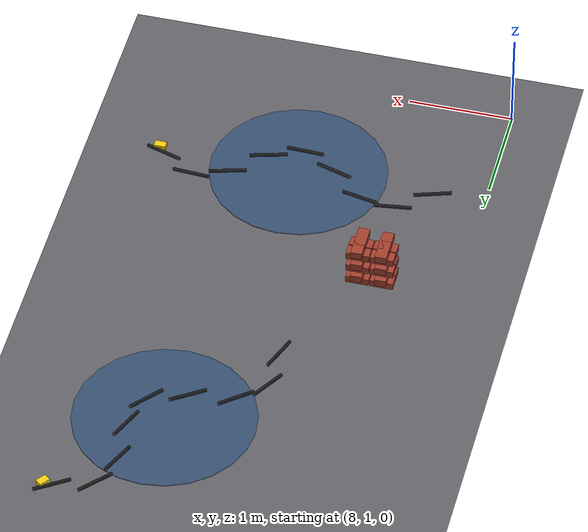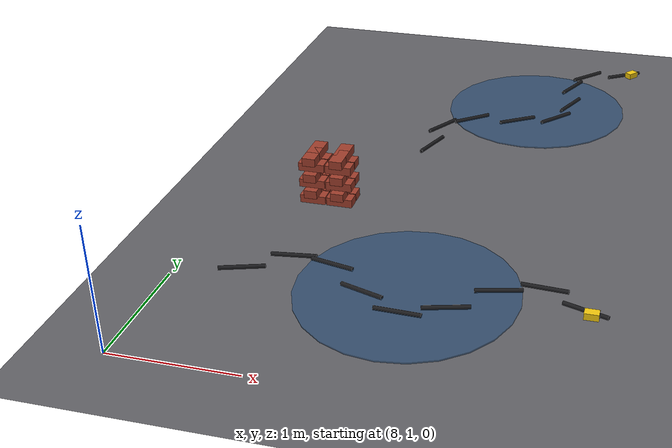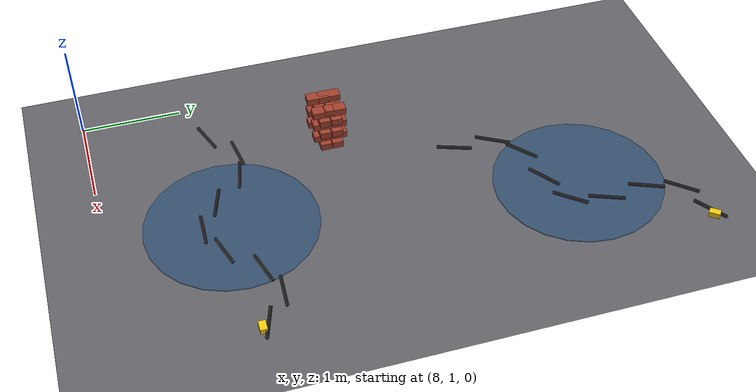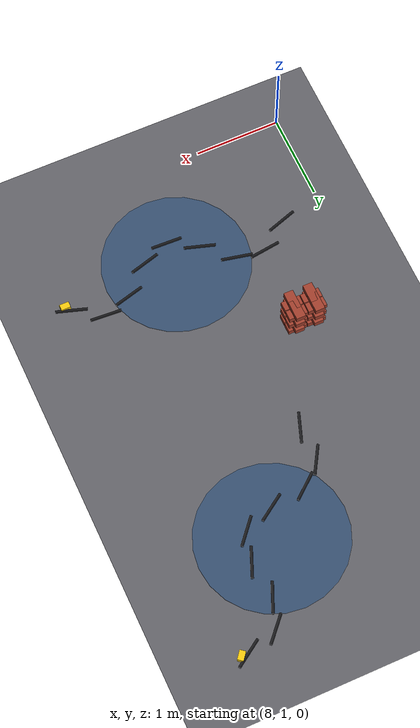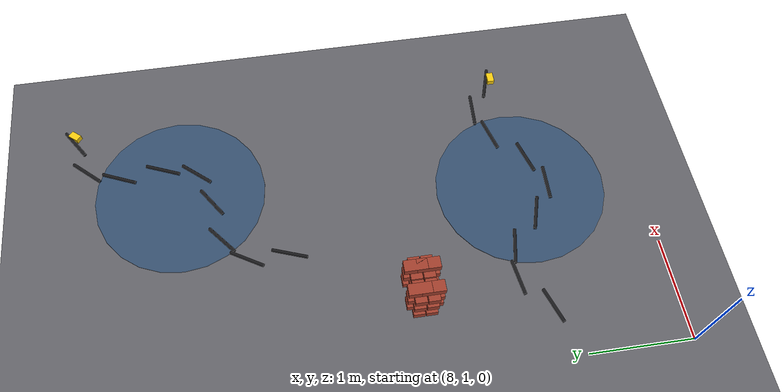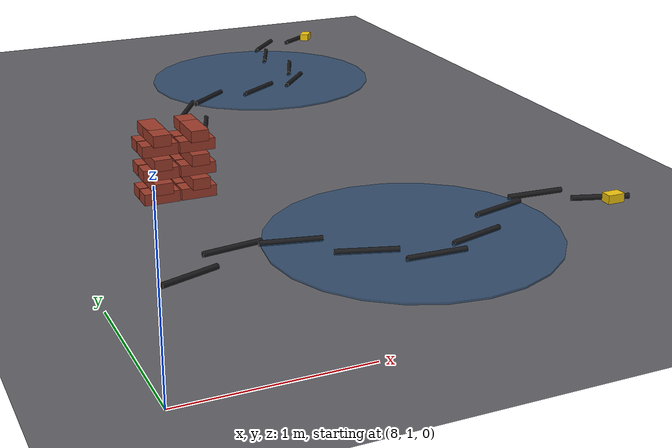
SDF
<sdf version="1.6">
 <world name="construction_lab_C">
  <model name="ground">
   <static>1</static>
   <link name="ground_link">
    <collision name="ground_col">
     <geometry><plane><normal>0 0 1</normal><size>60 60</size></plane></geometry>
     <surface><friction><ode><mu>0.9</mu><mu2>0.9</mu2></ode></friction></surface>
    </collision>
    <visual name="ground_vis">
     <geometry><plane><normal>0 0 1</normal><size>60 60</size></plane></geometry>
     <material><ambient>0.30 0.30 0.32 1</ambient><diffuse>0.38 0.38 0.40 1</diffuse></material>
    </visual>
   </link>
  </model>
  <model name="hazard_C6">
   <static>1</static>
   <link name="hC6_brick_stack_walkway_s00">
    <pose>8.685 3.34 0.035 0 0 0</pose>
    <gravity>0</gravity>
    <collision name="hC6_brick_stack_walkway_s00_col">
     <geometry><box><size>0.22 0.11 0.07</size></box></geometry>
    </collision>
    <visual name="hC6_brick_stack_walkway_s00_vis">
     <geometry><box><size>0.22 0.11 0.07</size></box></geometry>
     <material>
      <ambient>0.62 0.24 0.17 1</ambient>
      <diffuse>0.62 0.24 0.17 1</diffuse>
      <specular>0.1 0.1 0.1 1</specular>
     </material>
    </visual>
   </link>
   <link name="hC6_brick_stack_walkway_s01">
    <pose>8.915 3.34 0.035 0 0 0</pose>
    <gravity>0</gravity>
    <collision name="hC6_brick_stack_walkway_s01_col">
     <geometry><box><size>0.22 0.11 0.07</size></box></geometry>
    </collision>
    <visual name="hC6_brick_stack_walkway_s01_vis">
     <geometry><box><size>0.22 0.11 0.07</size></box></geometry>
     <material>
      <ambient>0.62 0.24 0.17 1</ambient>
      <diffuse>0.62 0.24 0.17 1</diffuse>
      <specular>0.1 0.1 0.1 1</specular>
     </material>
    </visual>
   </link>
   <link name="hC6_brick_stack_walkway_s02">
    <pose>8.685 3.46 0.035 0 0 0</pose>
    <gravity>0</gravity>
    <collision name="hC6_brick_stack_walkway_s02_col">
     <geometry><box><size>0.22 0.11 0.07</size></box></geometry>
    </collision>
    <visual name="hC6_brick_stack_walkway_s02_vis">
     <geometry><box><size>0.22 0.11 0.07</size></box></geometry>
     <material>
      <ambient>0.62 0.24 0.17 1</ambient>
      <diffuse>0.62 0.24 0.17 1</diffuse>
      <specular>0.1 0.1 0.1 1</specular>
     </material>
    </visual>
   </link>
   <link name="hC6_brick_stack_walkway_s03">
    <pose>8.915 3.46 0.035 0 0 0</pose>
    <gravity>0</gravity>
    <collision name="hC6_brick_stack_walkway_s03_col">
     <geometry><box><size>0.22 0.11 0.07</size></box></geometry>
    </collision>
    <visual name="hC6_brick_stack_walkway_s03_vis">
     <geometry><box><size>0.22 0.11 0.07</size></box></geometry>
     <material>
      <ambient>0.62 0.24 0.17 1</ambient>
      <diffuse>0.62 0.24 0.17 1</diffuse>
      <specular>0.1 0.1 0.1 1</specular>
     </material>
    </visual>
   </link>
   <link name="hC6_brick_stack_walkway_s10">
    <pose>8.685 3.34 0.11 0 0 1.5708</pose>
    <gravity>0</gravity>
    <collision name="hC6_brick_stack_walkway_s10_col">
     <geometry><box><size>0.22 0.11 0.07</size></box></geometry>
    </collision>
    <visual name="hC6_brick_stack_walkway_s10_vis">
     <geometry><box><size>0.22 0.11 0.07</size></box></geometry>
     <material>
      <ambient>0.62 0.24 0.17 1</ambient>
      <diffuse>0.62 0.24 0.17 1</diffuse>
      <specular>0.1 0.1 0.1 1</specular>
     </material>
    </visual>
   </link>
   <link name="hC6_brick_stack_walkway_s11">
    <pose>8.915 3.34 0.11 0 0 1.5708</pose>
    <gravity>0</gravity>
    <collision name="hC6_brick_stack_walkway_s11_col">
     <geometry><box><size>0.22 0.11 0.07</size></box></geometry>
    </collision>
    <visual name="hC6_brick_stack_walkway_s11_vis">
     <geometry><box><size>0.22 0.11 0.07</size></box></geometry>
     <material>
      <ambient>0.62 0.24 0.17 1</ambient>
      <diffuse>0.62 0.24 0.17 1</diffuse>
      <specular>0.1 0.1 0.1 1</specular>
     </material>
    </visual>
   </link>
   <link name="hC6_brick_stack_walkway_s12">
    <pose>8.685 3.46 0.11 0 0 1.5708</pose>
    <gravity>0</gravity>
    <collision name="hC6_brick_stack_walkway_s12_col">
     <geometry><box><size>0.22 0.11 0.07</size></box></geometry>
    </collision>
    <visual name="hC6_brick_stack_walkway_s12_vis">
     <geometry><box><size>0.22 0.11 0.07</size></box></geometry>
     <material>
      <ambient>0.62 0.24 0.17 1</ambient>
      <diffuse>0.62 0.24 0.17 1</diffuse>
      <specular>0.1 0.1 0.1 1</specular>
     </material>
    </visual>
   </link>
   <link name="hC6_brick_stack_walkway_s13">
    <pose>8.915 3.46 0.11 0 0 1.5708</pose>
    <gravity>0</gravity>
    <collision name="hC6_brick_stack_walkway_s13_col">
     <geometry><box><size>0.22 0.11 0.07</size></box></geometry>
    </collision>
    <visual name="hC6_brick_stack_walkway_s13_vis">
     <geometry><box><size>0.22 0.11 0.07</size></box></geometry>
     <material>
      <ambient>0.62 0.24 0.17 1</ambient>
      <diffuse>0.62 0.24 0.17 1</diffuse>
      <specular>0.1 0.1 0.1 1</specular>
     </material>
    </visual>
   </link>
   <link name="hC6_brick_stack_walkway_s20">
    <pose>8.685 3.34 0.185 0 0 0</pose>
    <gravity>0</gravity>
    <collision name="hC6_brick_stack_walkway_s20_col">
     <geometry><box><size>0.22 0.11 0.07</size></box></geometry>
    </collision>
    <visual name="hC6_brick_stack_walkway_s20_vis">
     <geometry><box><size>0.22 0.11 0.07</size></box></geometry>
     <material>
      <ambient>0.62 0.24 0.17 1</ambient>
      <diffuse>0.62 0.24 0.17 1</diffuse>
      <specular>0.1 0.1 0.1 1</specular>
     </material>
    </visual>
   </link>
   <link name="hC6_brick_stack_walkway_s21">
    <pose>8.915 3.34 0.185 0 0 0</pose>
    <gravity>0</gravity>
    <collision name="hC6_brick_stack_walkway_s21_col">
     <geometry><box><size>0.22 0.11 0.07</size></box></geometry>
    </collision>
    <visual name="hC6_brick_stack_walkway_s21_vis">
     <geometry><box><size>0.22 0.11 0.07</size></box></geometry>
     <material>
      <ambient>0.62 0.24 0.17 1</ambient>
      <diffuse>0.62 0.24 0.17 1</diffuse>
      <specular>0.1 0.1 0.1 1</specular>
     </material>
    </visual>
   </link>
   <link name="hC6_brick_stack_walkway_s22">
    <pose>8.685 3.46 0.185 0 0 0</pose>
    <gravity>0</gravity>
    <collision name="hC6_brick_stack_walkway_s22_col">
     <geometry><box><size>0.22 0.11 0.07</size></box></geometry>
    </collision>
    <visual name="hC6_brick_stack_walkway_s22_vis">
     <geometry><box><size>0.22 0.11 0.07</size></box></geometry>
     <material>
      <ambient>0.62 0.24 0.17 1</ambient>
      <diffuse>0.62 0.24 0.17 1</diffuse>
      <specular>0.1 0.1 0.1 1</specular>
     </material>
    </visual>
   </link>
   <link name="hC6_brick_stack_walkway_s23">
    <pose>8.915 3.46 0.185 0 0 0</pose>
    <gravity>0</gravity>
    <collision name="hC6_brick_stack_walkway_s23_col">
     <geometry><box><size>0.22 0.11 0.07</size></box></geometry>
    </collision>
    <visual name="hC6_brick_stack_walkway_s23_vis">
     <geometry><box><size>0.22 0.11 0.07</size></box></geometry>
     <material>
      <ambient>0.62 0.24 0.17 1</ambient>
      <diffuse>0.62 0.24 0.17 1</diffuse>
      <specular>0.1 0.1 0.1 1</specular>
     </material>
    </visual>
   </link>
   <link name="hC6_brick_stack_walkway_s30">
    <pose>8.685 3.34 0.26 0 0 1.5708</pose>
    <gravity>0</gravity>
    <collision name="hC6_brick_stack_walkway_s30_col">
     <geometry><box><size>0.22 0.11 0.07</size></box></geometry>
    </collision>
    <visual name="hC6_brick_stack_walkway_s30_vis">
     <geometry><box><size>0.22 0.11 0.07</size></box></geometry>
     <material>
      <ambient>0.62 0.24 0.17 1</ambient>
      <diffuse>0.62 0.24 0.17 1</diffuse>
      <specular>0.1 0.1 0.1 1</specular>
     </material>
    </visual>
   </link>
   <link name="hC6_brick_stack_walkway_s31">
    <pose>8.915 3.34 0.26 0 0 1.5708</pose>
    <gravity>0</gravity>
    <collision name="hC6_brick_stack_walkway_s31_col">
     <geometry><box><size>0.22 0.11 0.07</size></box></geometry>
    </collision>
    <visual name="hC6_brick_stack_walkway_s31_vis">
     <geometry><box><size>0.22 0.11 0.07</size></box></geometry>
     <material>
      <ambient>0.62 0.24 0.17 1</ambient>
      <diffuse>0.62 0.24 0.17 1</diffuse>
      <specular>0.1 0.1 0.1 1</specular>
     </material>
    </visual>
   </link>
   <link name="hC6_brick_stack_walkway_s32">
    <pose>8.685 3.46 0.26 0 0 1.5708</pose>
    <gravity>0</gravity>
    <collision name="hC6_brick_stack_walkway_s32_col">
     <geometry><box><size>0.22 0.11 0.07</size></box></geometry>
    </collision>
    <visual name="hC6_brick_stack_walkway_s32_vis">
     <geometry><box><size>0.22 0.11 0.07</size></box></geometry>
     <material>
      <ambient>0.62 0.24 0.17 1</ambient>
      <diffuse>0.62 0.24 0.17 1</diffuse>
      <specular>0.1 0.1 0.1 1</specular>
     </material>
    </visual>
   </link>
   <link name="hC6_brick_stack_walkway_s33">
    <pose>8.915 3.46 0.26 0 0 1.5708</pose>
    <gravity>0</gravity>
    <collision name="hC6_brick_stack_walkway_s33_col">
     <geometry><box><size>0.22 0.11 0.07</size></box></geometry>
    </collision>
    <visual name="hC6_brick_stack_walkway_s33_vis">
     <geometry><box><size>0.22 0.11 0.07</size></box></geometry>
     <material>
      <ambient>0.62 0.24 0.17 1</ambient>
      <diffuse>0.62 0.24 0.17 1</diffuse>
      <specular>0.1 0.1 0.1 1</specular>
     </material>
    </visual>
   </link>
   <link name="hC6_brick_stack_walkway_s40">
    <pose>8.685 3.34 0.335 0 0 0</pose>
    <gravity>0</gravity>
    <collision name="hC6_brick_stack_walkway_s40_col">
     <geometry><box><size>0.22 0.11 0.07</size></box></geometry>
    </collision>
    <visual name="hC6_brick_stack_walkway_s40_vis">
     <geometry><box><size>0.22 0.11 0.07</size></box></geometry>
     <material>
      <ambient>0.62 0.24 0.17 1</ambient>
      <diffuse>0.62 0.24 0.17 1</diffuse>
      <specular>0.1 0.1 0.1 1</specular>
     </material>
    </visual>
   </link>
   <link name="hC6_brick_stack_walkway_s41">
    <pose>8.915 3.34 0.335 0 0 0</pose>
    <gravity>0</gravity>
    <collision name="hC6_brick_stack_walkway_s41_col">
     <geometry><box><size>0.22 0.11 0.07</size></box></geometry>
    </collision>
    <visual name="hC6_brick_stack_walkway_s41_vis">
     <geometry><box><size>0.22 0.11 0.07</size></box></geometry>
     <material>
      <ambient>0.62 0.24 0.17 1</ambient>
      <diffuse>0.62 0.24 0.17 1</diffuse>
      <specular>0.1 0.1 0.1 1</specular>
     </material>
    </visual>
   </link>
   <link name="hC6_brick_stack_walkway_s42">
    <pose>8.685 3.46 0.335 0 0 0</pose>
    <gravity>0</gravity>
    <collision name="hC6_brick_stack_walkway_s42_col">
     <geometry><box><size>0.22 0.11 0.07</size></box></geometry>
    </collision>
    <visual name="hC6_brick_stack_walkway_s42_vis">
     <geometry><box><size>0.22 0.11 0.07</size></box></geometry>
     <material>
      <ambient>0.62 0.24 0.17 1</ambient>
      <diffuse>0.62 0.24 0.17 1</diffuse>
      <specular>0.1 0.1 0.1 1</specular>
     </material>
    </visual>
   </link>
   <link name="hC6_brick_stack_walkway_s43">
    <pose>8.915 3.46 0.335 0 0 0</pose>
    <gravity>0</gravity>
    <collision name="hC6_brick_stack_walkway_s43_col">
     <geometry><box><size>0.22 0.11 0.07</size></box></geometry>
    </collision>
    <visual name="hC6_brick_stack_walkway_s43_vis">
     <geometry><box><size>0.22 0.11 0.07</size></box></geometry>
     <material>
      <ambient>0.62 0.24 0.17 1</ambient>
      <diffuse>0.62 0.24 0.17 1</diffuse>
      <specular>0.1 0.1 0.1 1</specular>
     </material>
    </visual>
   </link>
   <link name="hC6_brick_stack_walkway_s50">
    <pose>8.685 3.34 0.41 0 0 1.5708</pose>
    <gravity>0</gravity>
    <collision name="hC6_brick_stack_walkway_s50_col">
     <geometry><box><size>0.22 0.11 0.07</size></box></geometry>
    </collision>
    <visual name="hC6_brick_stack_walkway_s50_vis">
     <geometry><box><size>0.22 0.11 0.07</size></box></geometry>
     <material>
      <ambient>0.62 0.24 0.17 1</ambient>
      <diffuse>0.62 0.24 0.17 1</diffuse>
      <specular>0.1 0.1 0.1 1</specular>
     </material>
    </visual>
   </link>
   <link name="hC6_brick_stack_walkway_s51">
    <pose>8.915 3.34 0.41 0 0 1.5708</pose>
    <gravity>0</gravity>
    <collision name="hC6_brick_stack_walkway_s51_col">
     <geometry><box><size>0.22 0.11 0.07</size></box></geometry>
    </collision>
    <visual name="hC6_brick_stack_walkway_s51_vis">
     <geometry><box><size>0.22 0.11 0.07</size></box></geometry>
     <material>
      <ambient>0.62 0.24 0.17 1</ambient>
      <diffuse>0.62 0.24 0.17 1</diffuse>
      <specular>0.1 0.1 0.1 1</specular>
     </material>
    </visual>
   </link>
   <link name="hC6_brick_stack_walkway_s52">
    <pose>8.685 3.46 0.41 0 0 1.5708</pose>
    <gravity>0</gravity>
    <collision name="hC6_brick_stack_walkway_s52_col">
     <geometry><box><size>0.22 0.11 0.07</size></box></geometry>
    </collision>
    <visual name="hC6_brick_stack_walkway_s52_vis">
     <geometry><box><size>0.22 0.11 0.07</size></box></geometry>
     <material>
      <ambient>0.62 0.24 0.17 1</ambient>
      <diffuse>0.62 0.24 0.17 1</diffuse>
      <specular>0.1 0.1 0.1 1</specular>
     </material>
    </visual>
   </link>
   <link name="hC6_brick_stack_walkway_s53">
    <pose>8.915 3.46 0.41 0 0 1.5708</pose>
    <gravity>0</gravity>
    <collision name="hC6_brick_stack_walkway_s53_col">
     <geometry><box><size>0.22 0.11 0.07</size></box></geometry>
    </collision>
    <visual name="hC6_brick_stack_walkway_s53_vis">
     <geometry><box><size>0.22 0.11 0.07</size></box></geometry>
     <material>
      <ambient>0.62 0.24 0.17 1</ambient>
      <diffuse>0.62 0.24 0.17 1</diffuse>
      <specular>0.1 0.1 0.1 1</specular>
     </material>
    </visual>
   </link>
  </model>
  <model name="hazard_C7">
   <static>1</static>
   <link name="hC7_water_puddle_water">
    <pose>9.8 2.2 0.006 0 0 0</pose>
    <gravity>0</gravity>
    <collision name="hC7_water_puddle_water_col">
     <geometry><cylinder><radius>0.85</radius><length>0.012</length></cylinder></geometry>
    </collision>
    <visual name="hC7_water_puddle_water_vis">
     <geometry><cylinder><radius>0.85</radius><length>0.012</length></cylinder></geometry>
     <material>
      <ambient>0.18 0.32 0.48 0.72</ambient>
      <diffuse>0.18 0.32 0.48 0.72</diffuse>
      <specular>0.1 0.1 0.1 1</specular>
     </material>
    </visual>
   </link>
   <link name="hC7_extension_cord_c0">
    <pose>8.5 2.2 0.017 0 1.5708 0.32</pose>
    <gravity>0</gravity>
    <collision name="hC7_extension_cord_c0_col">
     <geometry><cylinder><radius>0.017</radius><length>0.36</length></cylinder></geometry>
    </collision>
    <visual name="hC7_extension_cord_c0_vis">
     <geometry><cylinder><radius>0.017</radius><length>0.36</length></cylinder></geometry>
     <material>
      <ambient>0.1 0.1 0.11 1</ambient>
      <diffuse>0.1 0.1 0.11 1</diffuse>
      <specular>0.1 0.1 0.1 1</specular>
     </material>
    </visual>
   </link>
   <link name="hC7_extension_cord_c1">
    <pose>8.825 2.45557 0.017 0 1.5708 0.130716</pose>
    <gravity>0</gravity>
    <collision name="hC7_extension_cord_c1_col">
     <geometry><cylinder><radius>0.017</radius><length>0.36</length></cylinder></geometry>
    </collision>
    <visual name="hC7_extension_cord_c1_vis">
     <geometry><cylinder><radius>0.017</radius><length>0.36</length></cylinder></geometry>
     <material>
      <ambient>0.1 0.1 0.11 1</ambient>
      <diffuse>0.1 0.1 0.11 1</diffuse>
      <specular>0.1 0.1 0.1 1</specular>
     </material>
    </visual>
   </link>
   <link name="hC7_extension_cord_c2">
    <pose>9.15 2.4088 0.017 0 1.5708 -0.213208</pose>
    <gravity>0</gravity>
    <collision name="hC7_extension_cord_c2_col">
     <geometry><cylinder><radius>0.017</radius><length>0.36</length></cylinder></geometry>
    </collision>
    <visual name="hC7_extension_cord_c2_vis">
     <geometry><cylinder><radius>0.017</radius><length>0.36</length></cylinder></geometry>
     <material>
      <ambient>0.1 0.1 0.11 1</ambient>
      <diffuse>0.1 0.1 0.11 1</diffuse>
      <specular>0.1 0.1 0.1 1</specular>
     </material>
    </visual>
   </link>
   <link name="hC7_extension_cord_c3">
    <pose>9.475 2.11501 0.017 0 1.5708 -0.304902</pose>
    <gravity>0</gravity>
    <collision name="hC7_extension_cord_c3_col">
     <geometry><cylinder><radius>0.017</radius><length>0.36</length></cylinder></geometry>
    </collision>
    <visual name="hC7_extension_cord_c3_vis">
     <geometry><cylinder><radius>0.017</radius><length>0.36</length></cylinder></geometry>
     <material>
      <ambient>0.1 0.1 0.11 1</ambient>
      <diffuse>0.1 0.1 0.11 1</diffuse>
      <specular>0.1 0.1 0.1 1</specular>
     </material>
    </visual>
   </link>
   <link name="hC7_extension_cord_c4">
    <pose>9.8 1.92177 0.017 0 1.5708 -0.0358888</pose>
    <gravity>0</gravity>
    <collision name="hC7_extension_cord_c4_col">
     <geometry><cylinder><radius>0.017</radius><length>0.36</length></cylinder></geometry>
    </collision>
    <visual name="hC7_extension_cord_c4_vis">
     <geometry><cylinder><radius>0.017</radius><length>0.36</length></cylinder></geometry>
     <material>
      <ambient>0.1 0.1 0.11 1</ambient>
      <diffuse>0.1 0.1 0.11 1</diffuse>
      <specular>0.1 0.1 0.1 1</specular>
     </material>
    </visual>
   </link>
   <link name="hC7_extension_cord_c5">
    <pose>10.125 2.05768 0.017 0 1.5708 0.275582</pose>
    <gravity>0</gravity>
    <collision name="hC7_extension_cord_c5_col">
     <geometry><cylinder><radius>0.017</radius><length>0.36</length></cylinder></geometry>
    </collision>
    <visual name="hC7_extension_cord_c5_vis">
     <geometry><cylinder><radius>0.017</radius><length>0.36</length></cylinder></geometry>
     <material>
      <ambient>0.1 0.1 0.11 1</ambient>
      <diffuse>0.1 0.1 0.11 1</diffuse>
      <specular>0.1 0.1 0.1 1</specular>
     </material>
    </visual>
   </link>
   <link name="hC7_extension_cord_c6">
    <pose>10.45 2.36196 0.017 0 1.5708 0.261032</pose>
    <gravity>0</gravity>
    <collision name="hC7_extension_cord_c6_col">
     <geometry><cylinder><radius>0.017</radius><length>0.36</length></cylinder></geometry>
    </collision>
    <visual name="hC7_extension_cord_c6_vis">
     <geometry><cylinder><radius>0.017</radius><length>0.36</length></cylinder></geometry>
     <material>
      <ambient>0.1 0.1 0.11 1</ambient>
      <diffuse>0.1 0.1 0.11 1</diffuse>
      <specular>0.1 0.1 0.1 1</specular>
     </material>
    </visual>
   </link>
   <link name="hC7_extension_cord_c7">
    <pose>10.775 2.47464 0.017 0 1.5708 -0.062325</pose>
    <gravity>0</gravity>
    <collision name="hC7_extension_cord_c7_col">
     <geometry><cylinder><radius>0.017</radius><length>0.36</length></cylinder></geometry>
    </collision>
    <visual name="hC7_extension_cord_c7_vis">
     <geometry><cylinder><radius>0.017</radius><length>0.36</length></cylinder></geometry>
     <material>
      <ambient>0.1 0.1 0.11 1</ambient>
      <diffuse>0.1 0.1 0.11 1</diffuse>
      <specular>0.1 0.1 0.1 1</specular>
     </material>
    </visual>
   </link>
   <link name="hC7_extension_cord_c8">
    <pose>11.1 2.26241 0.017 0 1.5708 -0.31195</pose>
    <gravity>0</gravity>
    <collision name="hC7_extension_cord_c8_col">
     <geometry><cylinder><radius>0.017</radius><length>0.36</length></cylinder></geometry>
    </collision>
    <visual name="hC7_extension_cord_c8_vis">
     <geometry><cylinder><radius>0.017</radius><length>0.36</length></cylinder></geometry>
     <material>
      <ambient>0.1 0.1 0.11 1</ambient>
      <diffuse>0.1 0.1 0.11 1</diffuse>
      <specular>0.1 0.1 0.1 1</specular>
     </material>
    </visual>
   </link>
   <link name="hC7_extension_cord_plug">
    <pose>11.15 2.2 0.03 0 0 0</pose>
    <gravity>0</gravity>
    <collision name="hC7_extension_cord_plug_col">
     <geometry><box><size>0.11 0.07 0.055</size></box></geometry>
    </collision>
    <visual name="hC7_extension_cord_plug_vis">
     <geometry><box><size>0.11 0.07 0.055</size></box></geometry>
     <material>
      <ambient>0.95 0.78 0.05 1</ambient>
      <diffuse>0.95 0.78 0.05 1</diffuse>
      <specular>0.1 0.1 0.1 1</specular>
     </material>
    </visual>
   </link>
  </model>
  <model name="hazard_C8">
   <static>1</static>
   <link name="hC8_flexible_cord_c0">
    <pose>9.39191 4.58168 0.017 0 1.5708 1.22</pose>
    <gravity>0</gravity>
    <collision name="hC8_flexible_cord_c0_col">
     <geometry><cylinder><radius>0.017</radius><length>0.36</length></cylinder></geometry>
    </collision>
    <visual name="hC8_flexible_cord_c0_vis">
     <geometry><cylinder><radius>0.017</radius><length>0.36</length></cylinder></geometry>
     <material>
      <ambient>0.1 0.1 0.11 1</ambient>
      <diffuse>0.1 0.1 0.11 1</diffuse>
      <specular>0.1 0.1 0.1 1</specular>
     </material>
    </visual>
   </link>
   <link name="hC8_flexible_cord_c1">
    <pose>9.39373 4.99512 0.017 0 1.5708 1.03072</pose>
    <gravity>0</gravity>
    <collision name="hC8_flexible_cord_c1_col">
     <geometry><cylinder><radius>0.017</radius><length>0.36</length></cylinder></geometry>
    </collision>
    <visual name="hC8_flexible_cord_c1_vis">
     <geometry><cylinder><radius>0.017</radius><length>0.36</length></cylinder></geometry>
     <material>
      <ambient>0.1 0.1 0.11 1</ambient>
      <diffuse>0.1 0.1 0.11 1</diffuse>
      <specular>0.1 0.1 0.1 1</specular>
     </material>
    </visual>
   </link>
   <link name="hC8_flexible_cord_c2">
    <pose>9.6324 5.22063 0.017 0 1.5708 0.686792</pose>
    <gravity>0</gravity>
    <collision name="hC8_flexible_cord_c2_col">
     <geometry><cylinder><radius>0.017</radius><length>0.36</length></cylinder></geometry>
    </collision>
    <visual name="hC8_flexible_cord_c2_vis">
     <geometry><cylinder><radius>0.017</radius><length>0.36</length></cylinder></geometry>
     <material>
      <ambient>0.1 0.1 0.11 1</ambient>
      <diffuse>0.1 0.1 0.11 1</diffuse>
      <specular>0.1 0.1 0.1 1</specular>
     </material>
    </visual>
   </link>
   <link name="hC8_flexible_cord_c3">
    <pose>10.0646 5.29259 0.017 0 1.5708 0.595098</pose>
    <gravity>0</gravity>
    <collision name="hC8_flexible_cord_c3_col">
     <geometry><cylinder><radius>0.017</radius><length>0.36</length></cylinder></geometry>
    </collision>
    <visual name="hC8_flexible_cord_c3_vis">
     <geometry><cylinder><radius>0.017</radius><length>0.36</length></cylinder></geometry>
     <material>
      <ambient>0.1 0.1 0.11 1</ambient>
      <diffuse>0.1 0.1 0.11 1</diffuse>
      <specular>0.1 0.1 0.1 1</specular>
     </material>
    </visual>
   </link>
   <link name="hC8_flexible_cord_c4">
    <pose>10.4179 5.42705 0.017 0 1.5708 0.864111</pose>
    <gravity>0</gravity>
    <collision name="hC8_flexible_cord_c4_col">
     <geometry><cylinder><radius>0.017</radius><length>0.36</length></cylinder></geometry>
    </collision>
    <visual name="hC8_flexible_cord_c4_vis">
     <geometry><cylinder><radius>0.017</radius><length>0.36</length></cylinder></geometry>
     <material>
      <ambient>0.1 0.1 0.11 1</ambient>
      <diffuse>0.1 0.1 0.11 1</diffuse>
      <specular>0.1 0.1 0.1 1</specular>
     </material>
    </visual>
   </link>
   <link name="hC8_flexible_cord_c5">
    <pose>10.5135 5.76611 0.017 0 1.5708 1.17558</pose>
    <gravity>0</gravity>
    <collision name="hC8_flexible_cord_c5_col">
     <geometry><cylinder><radius>0.017</radius><length>0.36</length></cylinder></geometry>
    </collision>
    <visual name="hC8_flexible_cord_c5_vis">
     <geometry><cylinder><radius>0.017</radius><length>0.36</length></cylinder></geometry>
     <material>
      <ambient>0.1 0.1 0.11 1</ambient>
      <diffuse>0.1 0.1 0.11 1</diffuse>
      <specular>0.1 0.1 0.1 1</specular>
     </material>
    </visual>
   </link>
   <link name="hC8_flexible_cord_c6">
    <pose>10.4772 6.20984 0.017 0 1.5708 1.16103</pose>
    <gravity>0</gravity>
    <collision name="hC8_flexible_cord_c6_col">
     <geometry><cylinder><radius>0.017</radius><length>0.36</length></cylinder></geometry>
    </collision>
    <visual name="hC8_flexible_cord_c6_vis">
     <geometry><cylinder><radius>0.017</radius><length>0.36</length></cylinder></geometry>
     <material>
      <ambient>0.1 0.1 0.11 1</ambient>
      <diffuse>0.1 0.1 0.11 1</diffuse>
      <specular>0.1 0.1 0.1 1</specular>
     </material>
    </visual>
   </link>
   <link name="hC8_flexible_cord_c7">
    <pose>10.5909 6.53446 0.017 0 1.5708 0.837675</pose>
    <gravity>0</gravity>
    <collision name="hC8_flexible_cord_c7_col">
     <geometry><cylinder><radius>0.017</radius><length>0.36</length></cylinder></geometry>
    </collision>
    <visual name="hC8_flexible_cord_c7_vis">
     <geometry><cylinder><radius>0.017</radius><length>0.36</length></cylinder></geometry>
     <material>
      <ambient>0.1 0.1 0.11 1</ambient>
      <diffuse>0.1 0.1 0.11 1</diffuse>
      <specular>0.1 0.1 0.1 1</specular>
     </material>
    </visual>
   </link>
   <link name="hC8_flexible_cord_c8">
    <pose>10.9592 6.65712 0.017 0 1.5708 0.58805</pose>
    <gravity>0</gravity>
    <collision name="hC8_flexible_cord_c8_col">
     <geometry><cylinder><radius>0.017</radius><length>0.36</length></cylinder></geometry>
    </collision>
    <visual name="hC8_flexible_cord_c8_vis">
     <geometry><cylinder><radius>0.017</radius><length>0.36</length></cylinder></geometry>
     <material>
      <ambient>0.1 0.1 0.11 1</ambient>
      <diffuse>0.1 0.1 0.11 1</diffuse>
      <specular>0.1 0.1 0.1 1</specular>
     </material>
    </visual>
   </link>
   <link name="hC8_flexible_cord_plug">
    <pose>11.0392 6.65749 0.03 0 0 0.9</pose>
    <gravity>0</gravity>
    <collision name="hC8_flexible_cord_plug_col">
     <geometry><box><size>0.11 0.07 0.055</size></box></geometry>
    </collision>
    <visual name="hC8_flexible_cord_plug_vis">
     <geometry><box><size>0.11 0.07 0.055</size></box></geometry>
     <material>
      <ambient>0.95 0.78 0.05 1</ambient>
      <diffuse>0.95 0.78 0.05 1</diffuse>
      <specular>0.1 0.1 0.1 1</specular>
     </material>
    </visual>
   </link>
   <link name="hC8_water_puddle_water">
    <pose>10.2 5.6 0.006 0 0 0</pose>
    <gravity>0</gravity>
    <collision name="hC8_water_puddle_water_col">
     <geometry><cylinder><radius>0.85</radius><length>0.012</length></cylinder></geometry>
    </collision>
    <visual name="hC8_water_puddle_water_vis">
     <geometry><cylinder><radius>0.85</radius><length>0.012</length></cylinder></geometry>
     <material>
      <ambient>0.18 0.32 0.48 0.72</ambient>
      <diffuse>0.18 0.32 0.48 0.72</diffuse>
      <specular>0.1 0.1 0.1 1</specular>
     </material>
    </visual>
   </link>
  </model>
 </world>
</sdf>
